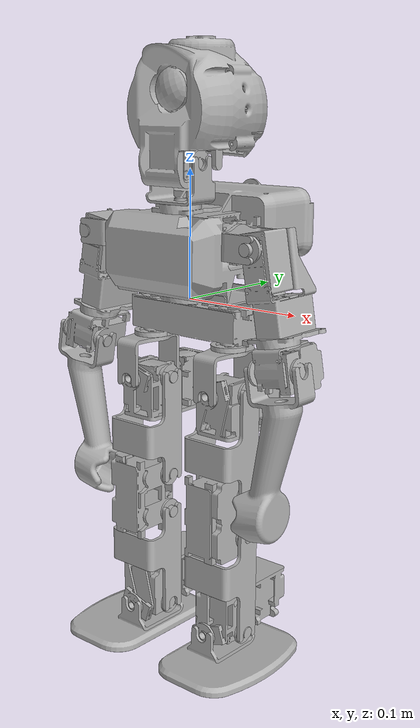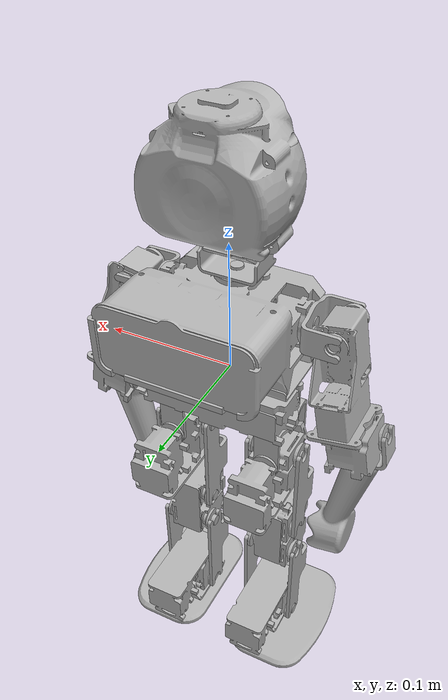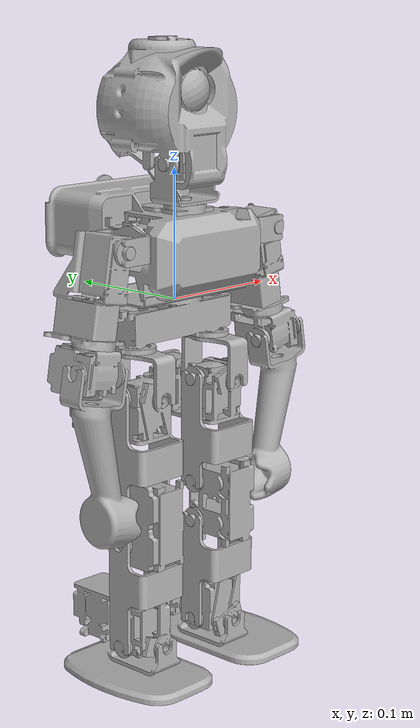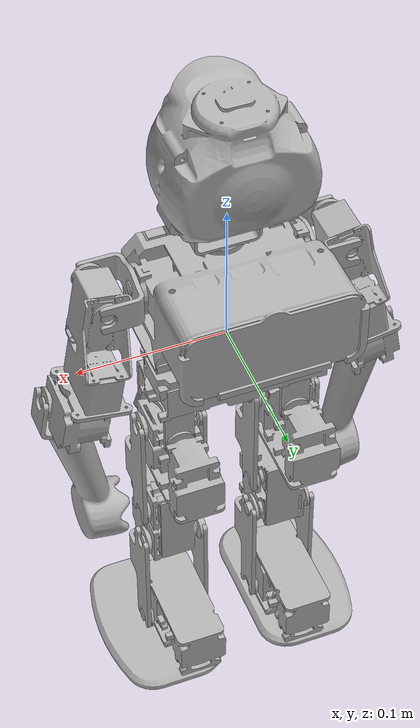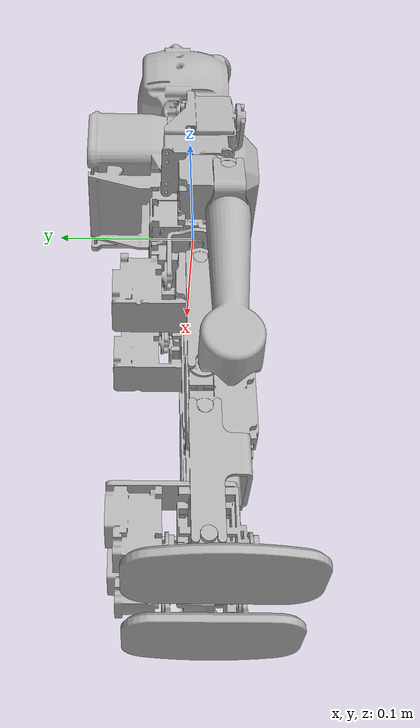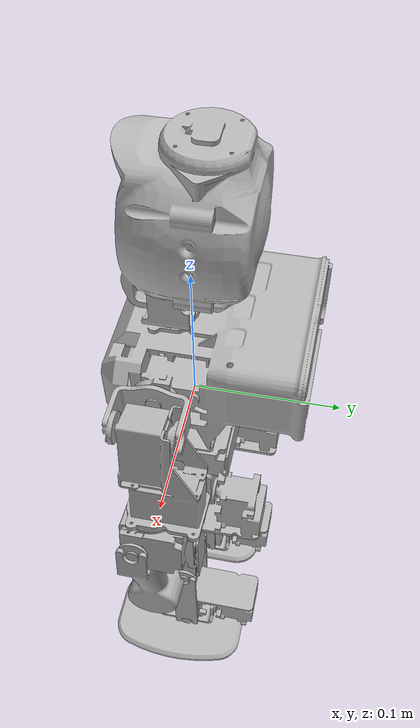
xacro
<?xml version="1.0" ?>
<robot name="roki" xmlns:xacro="http://www.ros.org/wiki/xacro">

<xacro:include filename="$(find roki_description)/urdf/materials.xacro" />
<xacro:include filename="$(find roki_description)/urdf/roki.trans" />
<xacro:include filename="$(find roki_description)/urdf/roki.gazebo" />
<link name="base_link">
  <inertial>
    <origin xyz="2.9200028407238833e-05 0.03136339266823339 0.049232642874940113" rpy="0 0 0"/>
    <mass value="0.6978470671486154"/>
    <inertia ixx="0.000836" iyy="0.000655" izz="0.001221" ixy="-1e-06" iyz="-4.8e-05" ixz="-0.0"/>
  </inertial>
  <visual>
    <origin xyz="0 0 0" rpy="0 0 0"/>
    <geometry>
      <mesh filename="../meshes/base_link.stl"/>
    </geometry>
    <material name="silver"/>
  </visual>
  <collision>
    <origin xyz="0 0 0" rpy="0 0 0"/>
    <geometry>
      <mesh filename="../meshes/base_link.stl"/>
    </geometry>
  </collision>
</link>

<link name="Waist_1">
  <inertial>
    <origin xyz="2.308951126554241e-05 0.010043771263089902 -0.019580735770714907" rpy="0 0 0"/>
    <mass value="0.15761065350197656"/>
    <inertia ixx="4.5e-05" iyy="0.000189" izz="0.000199" ixy="-0.0" iyz="-1e-06" ixz="0.0"/>
  </inertial>
  <visual>
    <origin xyz="0.0 -0.0 -0.0039" rpy="0 0 0"/>
    <geometry>
      <mesh filename="../meshes/Waist_1.stl"/>
    </geometry>
    <material name="silver"/>
  </visual>
  <collision>
    <origin xyz="0.0 -0.0 -0.0039" rpy="0 0 0"/>
    <geometry>
      <mesh filename="../meshes/Waist_1.stl"/>
    </geometry>
  </collision>
</link>

<link name="U_Dual_Lever_Carbon_1__1">
  <inertial>
    <origin xyz="4.508199369368526e-14 -0.00459793550468748 -0.010314227100914147" rpy="0 0 0"/>
    <mass value="0.009545203780731138"/>
    <inertia ixx="5e-06" iyy="1e-06" izz="4e-06" ixy="-0.0" iyz="-0.0" ixz="-0.0"/>
  </inertial>
  <visual>
    <origin xyz="-0.04 0.0 0.0339" rpy="0 0 0"/>
    <geometry>
      <mesh filename="../meshes/U_Dual_Lever_Carbon_1__1.stl"/>
    </geometry>
    <material name="silver"/>
  </visual>
  <collision>
    <origin xyz="-0.04 0.0 0.0339" rpy="0 0 0"/>
    <geometry>
      <mesh filename="../meshes/U_Dual_Lever_Carbon_1__1.stl"/>
    </geometry>
  </collision>
</link>

<link name="U_Dual_Lever_Carbon_2">
  <inertial>
    <origin xyz="4.5900783174346316e-14 -0.004597935504687689 -0.010314227100913793" rpy="0 0 0"/>
    <mass value="0.009545203780731142"/>
    <inertia ixx="5e-06" iyy="1e-06" izz="4e-06" ixy="-0.0" iyz="-0.0" ixz="-0.0"/>
  </inertial>
  <visual>
    <origin xyz="0.04 0.0 0.0339" rpy="0 0 0"/>
    <geometry>
      <mesh filename="../meshes/U_Dual_Lever_Carbon_2.stl"/>
    </geometry>
    <material name="silver"/>
  </visual>
  <collision>
    <origin xyz="0.04 0.0 0.0339" rpy="0 0 0"/>
    <geometry>
      <mesh filename="../meshes/U_Dual_Lever_Carbon_2.stl"/>
    </geometry>
  </collision>
</link>

<link name="Robot_Football_Player_SKS-2501_Neck_Carbonv2_1">
  <inertial>
    <origin xyz="1.59054234997918e-07 0.0004029194592024207 0.00889294708045188" rpy="0 0 0"/>
    <mass value="0.006889915174480099"/>
    <inertia ixx="1e-06" iyy="3e-06" izz="3e-06" ixy="0.0" iyz="-0.0" ixz="-0.0"/>
  </inertial>
  <visual>
    <origin xyz="-2.5e-05 0.011152 -0.07478" rpy="0 0 0"/>
    <geometry>
      <mesh filename="../meshes/Robot_Football_Player_SKS-2501_Neck_Carbonv2_1.stl"/>
    </geometry>
    <material name="silver"/>
  </visual>
  <collision>
    <origin xyz="-2.5e-05 0.011152 -0.07478" rpy="0 0 0"/>
    <geometry>
      <mesh filename="../meshes/Robot_Football_Player_SKS-2501_Neck_Carbonv2_1.stl"/>
    </geometry>
  </collision>
</link>

<link name="Robot_Football_Player_SKS-2501_Head_B0348_Head_Base_06v1_1">
  <inertial>
    <origin xyz="0.019224047998985833 0.015494041418051888 0.03424850028891592" rpy="0 0 0"/>
    <mass value="0.26416283236894345"/>
    <inertia ixx="0.000253" iyy="0.000229" izz="0.000221" ixy="0.0" iyz="-3.3e-05" ixz="-3e-06"/>
  </inertial>
  <visual>
    <origin xyz="0.019975 0.011152 -0.10478" rpy="0 0 0"/>
    <geometry>
      <mesh filename="../meshes/Robot_Football_Player_SKS-2501_Head_B0348_Head_Base_06v1_1.stl"/>
    </geometry>
    <material name="silver"/>
  </visual>
  <collision>
    <origin xyz="0.019975 0.011152 -0.10478" rpy="0 0 0"/>
    <geometry>
      <mesh filename="../meshes/Robot_Football_Player_SKS-2501_Head_B0348_Head_Base_06v1_1.stl"/>
    </geometry>
  </collision>
</link>

<link name="roki_Robot_Football_Player_SKS-2501_Servov12_10_v1_1">
  <inertial>
    <origin xyz="0.0058858874958540724 0.028181458629030074 -0.03337571755207666" rpy="0 0 0"/>
    <mass value="0.12983667443511107"/>
    <inertia ixx="9.4e-05" iyy="7.7e-05" izz="3.4e-05" ixy="-3e-06" iyz="1.9e-05" ixz="1.1e-05"/>
  </inertial>
  <visual>
    <origin xyz="-0.0799 0.03121 -0.0494" rpy="0 0 0"/>
    <geometry>
      <mesh filename="../meshes/roki_Robot_Football_Player_SKS-2501_Servov12_10_v1_1.stl"/>
    </geometry>
    <material name="silver"/>
  </visual>
  <collision>
    <origin xyz="-0.0799 0.03121 -0.0494" rpy="0 0 0"/>
    <geometry>
      <mesh filename="../meshes/roki_Robot_Football_Player_SKS-2501_Servov12_10_v1_1.stl"/>
    </geometry>
  </collision>
</link>

<link name="roki_Robot_Football_Player_SKS-2501_Servov12_10__v1_1__1">
  <inertial>
    <origin xyz="-0.0058842426537036585 0.028181458629013886 -0.03337600758181479" rpy="0 0 0"/>
    <mass value="0.12983667443511687"/>
    <inertia ixx="9.4e-05" iyy="7.7e-05" izz="3.4e-05" ixy="3e-06" iyz="1.9e-05" ixz="-1.1e-05"/>
  </inertial>
  <visual>
    <origin xyz="0.0799 0.03121 -0.0494" rpy="0 0 0"/>
    <geometry>
      <mesh filename="../meshes/roki_Robot_Football_Player_SKS-2501_Servov12_10__v1_1__1.stl"/>
    </geometry>
    <material name="silver"/>
  </visual>
  <collision>
    <origin xyz="0.0799 0.03121 -0.0494" rpy="0 0 0"/>
    <geometry>
      <mesh filename="../meshes/roki_Robot_Football_Player_SKS-2501_Servov12_10__v1_1__1.stl"/>
    </geometry>
  </collision>
</link>

<link name="Elbow_Bracket_01_1">
  <inertial>
    <origin xyz="-0.004047474545655377 0.0010168978596869216 -0.016722696886682605" rpy="0 0 0"/>
    <mass value="0.05553085932222209"/>
    <inertia ixx="1.2e-05" iyy="1.1e-05" izz="1.6e-05" ixy="0.0" iyz="0.0" ixz="1e-06"/>
  </inertial>
  <visual>
    <origin xyz="0.09239 0.008635 0.021432" rpy="0 0 0"/>
    <geometry>
      <mesh filename="../meshes/Elbow_Bracket_01_1.stl"/>
    </geometry>
    <material name="silver"/>
  </visual>
  <collision>
    <origin xyz="0.09239 0.008635 0.021432" rpy="0 0 0"/>
    <geometry>
      <mesh filename="../meshes/Elbow_Bracket_01_1.stl"/>
    </geometry>
  </collision>
</link>

<link name="Elbow_Bracket_01_1__1">
  <inertial>
    <origin xyz="0.004047474545655905 0.0010168978596869606 -0.016722696886683375" rpy="0 0 0"/>
    <mass value="0.055530859322222265"/>
    <inertia ixx="1.2e-05" iyy="1.1e-05" izz="1.6e-05" ixy="-0.0" iyz="0.0" ixz="-1e-06"/>
  </inertial>
  <visual>
    <origin xyz="-0.09239 0.008635 0.021432" rpy="0 0 0"/>
    <geometry>
      <mesh filename="../meshes/Elbow_Bracket_01_1__1.stl"/>
    </geometry>
    <material name="silver"/>
  </visual>
  <collision>
    <origin xyz="-0.09239 0.008635 0.021432" rpy="0 0 0"/>
    <geometry>
      <mesh filename="../meshes/Elbow_Bracket_01_1__1.stl"/>
    </geometry>
  </collision>
</link>

<link name="Hand_Football_Player_05_1">
  <inertial>
    <origin xyz="0.015641121769252822 1.938563667230886e-08 -0.06739227885463536" rpy="0 0 0"/>
    <mass value="0.048927254647909736"/>
    <inertia ixx="8.2e-05" iyy="8.4e-05" izz="1.1e-05" ixy="-0.0" iyz="-0.0" ixz="-1.2e-05"/>
  </inertial>
  <visual>
    <origin xyz="-0.07838 0.016535 0.04218" rpy="0 0 0"/>
    <geometry>
      <mesh filename="../meshes/Hand_Football_Player_05_1.stl"/>
    </geometry>
    <material name="silver"/>
  </visual>
  <collision>
    <origin xyz="-0.07838 0.016535 0.04218" rpy="0 0 0"/>
    <geometry>
      <mesh filename="../meshes/Hand_Football_Player_05_1.stl"/>
    </geometry>
  </collision>
</link>

<link name="Hand_Football_Player_05__1__1">
  <inertial>
    <origin xyz="-0.015641121769251268 -1.9385632887142235e-08 -0.06739227885463595" rpy="0 0 0"/>
    <mass value="0.04892725464790963"/>
    <inertia ixx="8.2e-05" iyy="8.4e-05" izz="1.1e-05" ixy="-0.0" iyz="0.0" ixz="1.2e-05"/>
  </inertial>
  <visual>
    <origin xyz="0.07838 0.016535 0.04218" rpy="0 0 0"/>
    <geometry>
      <mesh filename="../meshes/Hand_Football_Player_05__1__1.stl"/>
    </geometry>
    <material name="silver"/>
  </visual>
  <collision>
    <origin xyz="0.07838 0.016535 0.04218" rpy="0 0 0"/>
    <geometry>
      <mesh filename="../meshes/Hand_Football_Player_05__1__1.stl"/>
    </geometry>
  </collision>
</link>

<link name="U_Lever_Carbon_2__1">
  <inertial>
    <origin xyz="0.007714216006614476 4.458239333260394e-16 -2.4577562207639403e-14" rpy="0 0 0"/>
    <mass value="0.007572394947205684"/>
    <inertia ixx="3e-06" iyy="1e-06" izz="3e-06" ixy="0.0" iyz="0.0" ixz="-0.0"/>
  </inertial>
  <visual>
    <origin xyz="-0.0559 0.01121 -0.0494" rpy="0 0 0"/>
    <geometry>
      <mesh filename="../meshes/U_Lever_Carbon_2__1.stl"/>
    </geometry>
    <material name="silver"/>
  </visual>
  <collision>
    <origin xyz="-0.0559 0.01121 -0.0494" rpy="0 0 0"/>
    <geometry>
      <mesh filename="../meshes/U_Lever_Carbon_2__1.stl"/>
    </geometry>
  </collision>
</link>

<link name="U_Lever_Carbon_1__1">
  <inertial>
    <origin xyz="-0.007714216006614295 2.393918396847994e-16 -2.4195923042924505e-14" rpy="0 0 0"/>
    <mass value="0.007572394947205684"/>
    <inertia ixx="3e-06" iyy="1e-06" izz="3e-06" ixy="0.0" iyz="-0.0" ixz="0.0"/>
  </inertial>
  <visual>
    <origin xyz="0.0559 0.01121 -0.0494" rpy="0 0 0"/>
    <geometry>
      <mesh filename="../meshes/U_Lever_Carbon_1__1.stl"/>
    </geometry>
    <material name="silver"/>
  </visual>
  <collision>
    <origin xyz="0.0559 0.01121 -0.0494" rpy="0 0 0"/>
    <geometry>
      <mesh filename="../meshes/U_Lever_Carbon_1__1.stl"/>
    </geometry>
  </collision>
</link>

<link name="Knee_1__1">
  <inertial>
    <origin xyz="0.01861091530213354 -0.009330309461074559 -0.016566663881952354" rpy="0 0 0"/>
    <mass value="0.10930325968922582"/>
    <inertia ixx="5.3e-05" iyy="5e-05" izz="3.3e-05" ixy="0.0" iyz="-0.0" ixz="-0.0"/>
  </inertial>
  <visual>
    <origin xyz="-0.0196 0.001 0.1484" rpy="0 0 0"/>
    <geometry>
      <mesh filename="../meshes/Knee_1__1.stl"/>
    </geometry>
    <material name="silver"/>
  </visual>
  <collision>
    <origin xyz="-0.0196 0.001 0.1484" rpy="0 0 0"/>
    <geometry>
      <mesh filename="../meshes/Knee_1__1.stl"/>
    </geometry>
  </collision>
</link>

<link name="Hip_Shin_Carbon_1__1__1">
  <inertial>
    <origin xyz="0.01999999999999781 -0.00810351282531593 -0.03792612915551327" rpy="0 0 0"/>
    <mass value="0.022625400240065405"/>
    <inertia ixx="1.3e-05" iyy="1.8e-05" izz="1.2e-05" ixy="-0.0" iyz="1e-06" ixz="-0.0"/>
  </inertial>
  <visual>
    <origin xyz="-0.0196 0.001 0.1814" rpy="0 0 0"/>
    <geometry>
      <mesh filename="../meshes/Hip_Shin_Carbon_1__1__1.stl"/>
    </geometry>
    <material name="silver"/>
  </visual>
  <collision>
    <origin xyz="-0.0196 0.001 0.1814" rpy="0 0 0"/>
    <geometry>
      <mesh filename="../meshes/Hip_Shin_Carbon_1__1__1.stl"/>
    </geometry>
  </collision>
</link>

<link name="Knee_1__1__1">
  <inertial>
    <origin xyz="0.021189084697862258 -0.009330309461045357 -0.016566663882006533" rpy="0 0 0"/>
    <mass value="0.10930325968922545"/>
    <inertia ixx="5.3e-05" iyy="5e-05" izz="3.3e-05" ixy="-0.0" iyz="-0.0" ixz="0.0"/>
  </inertial>
  <visual>
    <origin xyz="0.0596 0.001 0.1484" rpy="0 0 0"/>
    <geometry>
      <mesh filename="../meshes/Knee_1__1__1.stl"/>
    </geometry>
    <material name="silver"/>
  </visual>
  <collision>
    <origin xyz="0.0596 0.001 0.1484" rpy="0 0 0"/>
    <geometry>
      <mesh filename="../meshes/Knee_1__1__1.stl"/>
    </geometry>
  </collision>
</link>

<link name="Hip_Shin_Carbon_2__1">
  <inertial>
    <origin xyz="-0.020000000000005392 -0.008103512825321298 -0.03792612915550861" rpy="0 0 0"/>
    <mass value="0.022625400240065388"/>
    <inertia ixx="1.3e-05" iyy="1.8e-05" izz="1.2e-05" ixy="-0.0" iyz="1e-06" ixz="-0.0"/>
  </inertial>
  <visual>
    <origin xyz="0.0198 0.001 0.1814" rpy="0 0 0"/>
    <geometry>
      <mesh filename="../meshes/Hip_Shin_Carbon_2__1.stl"/>
    </geometry>
    <material name="silver"/>
  </visual>
  <collision>
    <origin xyz="0.0198 0.001 0.1814" rpy="0 0 0"/>
    <geometry>
      <mesh filename="../meshes/Hip_Shin_Carbon_2__1.stl"/>
    </geometry>
  </collision>
</link>

<link name="Dual_Servo_Al_022_3">
  <inertial>
    <origin xyz="0.019442839528037853 0.015065566617809313 0.011274811249782246" rpy="0 0 0"/>
    <mass value="0.11852191596762508"/>
    <inertia ixx="8.3e-05" iyy="3.3e-05" izz="7.2e-05" ixy="-1e-06" iyz="-7e-06" ixz="-0.0"/>
  </inertial>
  <visual>
    <origin xyz="0.0598 0.001 0.2639" rpy="0 0 0"/>
    <geometry>
      <mesh filename="../meshes/Dual_Servo_Al_022_3.stl"/>
    </geometry>
    <material name="silver"/>
  </visual>
  <collision>
    <origin xyz="0.0598 0.001 0.2639" rpy="0 0 0"/>
    <geometry>
      <mesh filename="../meshes/Dual_Servo_Al_022_3.stl"/>
    </geometry>
  </collision>
</link>

<link name="Shoe_Flex_1__1">
  <inertial>
    <origin xyz="0.01077197187732682 -0.029657932964981537 -0.020426201063386384" rpy="0 0 0"/>
    <mass value="0.05098521202956298"/>
    <inertia ixx="4.7e-05" iyy="2.1e-05" izz="6.6e-05" ixy="0.0" iyz="-0.0" ixz="1e-06"/>
  </inertial>
  <visual>
    <origin xyz="-0.039 -0.0211 0.2639" rpy="0 0 0"/>
    <geometry>
      <mesh filename="../meshes/Shoe_Flex_1__1.stl"/>
    </geometry>
    <material name="silver"/>
  </visual>
  <collision>
    <origin xyz="-0.039 -0.0211 0.2639" rpy="0 0 0"/>
    <geometry>
      <mesh filename="../meshes/Shoe_Flex_1__1.stl"/>
    </geometry>
  </collision>
</link>

<link name="roki2_simlify_Dual_Servo_Al_022Copyv1_2">
  <inertial>
    <origin xyz="0.020357428670802896 0.015064587409574209 0.011268101437178046" rpy="0 0 0"/>
    <mass value="0.1185219159610662"/>
    <inertia ixx="8.3e-05" iyy="3.3e-05" izz="7.2e-05" ixy="1e-06" iyz="-7e-06" ixz="0.0"/>
  </inertial>
  <visual>
    <origin xyz="-0.0196 0.001 0.2639" rpy="0 0 0"/>
    <geometry>
      <mesh filename="../meshes/roki2_simlify_Dual_Servo_Al_022Copyv1_2.stl"/>
    </geometry>
    <material name="silver"/>
  </visual>
  <collision>
    <origin xyz="-0.0196 0.001 0.2639" rpy="0 0 0"/>
    <geometry>
      <mesh filename="../meshes/roki2_simlify_Dual_Servo_Al_022Copyv1_2.stl"/>
    </geometry>
  </collision>
</link>

<link name="Shoe_Flex_1">
  <inertial>
    <origin xyz="-0.010772002418327563 0.01894180700262037 -0.02042626598922509" rpy="0 0 0"/>
    <mass value="0.05098531070774809"/>
    <inertia ixx="4.7e-05" iyy="2.1e-05" izz="6.6e-05" ixy="-0.0" iyz="-0.0" ixz="-1e-06"/>
  </inertial>
  <visual>
    <origin xyz="0.039394 0.027478 0.263751" rpy="0 0 0"/>
    <geometry>
      <mesh filename="../meshes/Shoe_Flex_1.stl"/>
    </geometry>
    <material name="silver"/>
  </visual>
  <collision>
    <origin xyz="0.039394 0.027478 0.263751" rpy="0 0 0"/>
    <geometry>
      <mesh filename="../meshes/Shoe_Flex_1.stl"/>
    </geometry>
  </collision>
</link>

<link name="Dual_Servo_Al_022__1__1">
  <inertial>
    <origin xyz="0.0009571604719541549 -0.007034433382188548 -0.011274811249774988" rpy="0 0 0"/>
    <mass value="0.11852191596762508"/>
    <inertia ixx="8.3e-05" iyy="3.3e-05" izz="7.2e-05" ixy="1e-06" iyz="7e-06" ixz="-0.0"/>
  </inertial>
  <visual>
    <origin xyz="0.04 -0.0211 0.0659" rpy="0 0 0"/>
    <geometry>
      <mesh filename="../meshes/Dual_Servo_Al_022__1__1.stl"/>
    </geometry>
    <material name="silver"/>
  </visual>
  <collision>
    <origin xyz="0.04 -0.0211 0.0659" rpy="0 0 0"/>
    <geometry>
      <mesh filename="../meshes/Dual_Servo_Al_022__1__1.stl"/>
    </geometry>
  </collision>
</link>

<link name="roki2_simlify_Dual_Servo_Al_022Copyv1__1__1">
  <inertial>
    <origin xyz="-0.0009574286708060598 -0.0070354125904229115 -0.011268101437177519" rpy="0 0 0"/>
    <mass value="0.1185219159610662"/>
    <inertia ixx="8.3e-05" iyy="3.3e-05" izz="7.2e-05" ixy="-1e-06" iyz="7e-06" ixz="0.0"/>
  </inertial>
  <visual>
    <origin xyz="-0.04 -0.0211 0.0659" rpy="0 0 0"/>
    <geometry>
      <mesh filename="../meshes/roki2_simlify_Dual_Servo_Al_022Copyv1__1__1.stl"/>
    </geometry>
    <material name="silver"/>
  </visual>
  <collision>
    <origin xyz="-0.04 -0.0211 0.0659" rpy="0 0 0"/>
    <geometry>
      <mesh filename="../meshes/roki2_simlify_Dual_Servo_Al_022Copyv1__1__1.stl"/>
    </geometry>
  </collision>
</link>

<link name="Hip_Shin_Carbon_2">
  <inertial>
    <origin xyz="0.019999999999999296 -0.008103512825317922 -0.04457387084448518" rpy="0 0 0"/>
    <mass value="0.022625400240065388"/>
    <inertia ixx="1.3e-05" iyy="1.8e-05" izz="1.2e-05" ixy="0.0" iyz="-1e-06" ixz="0.0"/>
  </inertial>
  <visual>
    <origin xyz="-0.0196 0.001 0.0659" rpy="0 0 0"/>
    <geometry>
      <mesh filename="../meshes/Hip_Shin_Carbon_2.stl"/>
    </geometry>
    <material name="silver"/>
  </visual>
  <collision>
    <origin xyz="-0.0196 0.001 0.0659" rpy="0 0 0"/>
    <geometry>
      <mesh filename="../meshes/Hip_Shin_Carbon_2.stl"/>
    </geometry>
  </collision>
</link>

<link name="Hip_Shin_Carbon_1__1">
  <inertial>
    <origin xyz="-0.0200000000000011 -0.00810351282531565 -0.044573870844484706" rpy="0 0 0"/>
    <mass value="0.022625400240065405"/>
    <inertia ixx="1.3e-05" iyy="1.8e-05" izz="1.2e-05" ixy="0.0" iyz="-1e-06" ixz="-0.0"/>
  </inertial>
  <visual>
    <origin xyz="0.0196 0.001 0.0659" rpy="0 0 0"/>
    <geometry>
      <mesh filename="../meshes/Hip_Shin_Carbon_1__1.stl"/>
    </geometry>
    <material name="silver"/>
  </visual>
  <collision>
    <origin xyz="0.0196 0.001 0.0659" rpy="0 0 0"/>
    <geometry>
      <mesh filename="../meshes/Hip_Shin_Carbon_1__1.stl"/>
    </geometry>
  </collision>
</link>

<joint name="waist_yaw" type="continuous">
  <origin xyz="0.0 0.0 0.0039" rpy="0 0 0"/>
  <parent link="base_link"/>
  <child link="Waist_1"/>
  <axis xyz="-0.0 -0.0 -1.0"/>
</joint>

<joint name="left_hip_yaw" type="revolute">
  <origin xyz="0.04 -0.0 -0.0378" rpy="0 0 0"/>
  <parent link="Waist_1"/>
  <child link="U_Dual_Lever_Carbon_1__1"/>
  <axis xyz="-0.0 -0.0 -1.0"/>
  <limit upper="0.523599" lower="-0.523599" effort="100" velocity="100"/>
</joint>

<joint name="right_hip_yaw" type="revolute">
  <origin xyz="-0.04 -0.0 -0.0378" rpy="0 0 0"/>
  <parent link="Waist_1"/>
  <child link="U_Dual_Lever_Carbon_2"/>
  <axis xyz="-0.0 -0.0 -1.0"/>
  <limit upper="0.523599" lower="-0.523599" effort="100" velocity="100"/>
</joint>

<joint name="head_yaw" type="revolute">
  <origin xyz="2.5e-05 -0.011152 0.07478" rpy="0 0 0"/>
  <parent link="base_link"/>
  <child link="Robot_Football_Player_SKS-2501_Neck_Carbonv2_1"/>
  <axis xyz="0.0 -0.0 1.0"/>
  <limit upper="0.785398" lower="-0.785398" effort="100" velocity="100"/>
</joint>

<joint name="head_pitch" type="revolute">
  <origin xyz="-0.02 0.0 0.03" rpy="0 0 0"/>
  <parent link="Robot_Football_Player_SKS-2501_Neck_Carbonv2_1"/>
  <child link="Robot_Football_Player_SKS-2501_Head_B0348_Head_Base_06v1_1"/>
  <axis xyz="-1.0 -0.0 0.0"/>
  <limit upper="0.698132" lower="-1.919862" effort="100" velocity="100"/>
</joint>

<joint name="left_shoulder_roll" type="revolute">
  <origin xyz="0.024 -0.02 0.0" rpy="0 0 0"/>
  <parent link="U_Lever_Carbon_2__1"/>
  <child link="roki_Robot_Football_Player_SKS-2501_Servov12_10_v1_1"/>
  <axis xyz="-0.0 -1.0 0.0"/>
  <limit upper="2.96706" lower="0.0" effort="100" velocity="100"/>
</joint>

<joint name="right_shoulder_roll" type="revolute">
  <origin xyz="-0.024 -0.02 0.0" rpy="0 0 0"/>
  <parent link="U_Lever_Carbon_1__1"/>
  <child link="roki_Robot_Football_Player_SKS-2501_Servov12_10__v1_1__1"/>
  <axis xyz="-0.0 -1.0 -0.0"/>
  <limit upper="0.0" lower="-2.96706" effort="100" velocity="100"/>
</joint>

<joint name="right_elbow_yaw" type="revolute">
  <origin xyz="-0.01249 0.022575 -0.070832" rpy="0 0 0"/>
  <parent link="roki_Robot_Football_Player_SKS-2501_Servov12_10__v1_1__1"/>
  <child link="Elbow_Bracket_01_1"/>
  <axis xyz="-0.173648 -0.0 -0.984808"/>
  <limit upper="1.570796" lower="-1.570796" effort="100" velocity="100"/>
</joint>

<joint name="left_elbow_yaw" type="revolute">
  <origin xyz="0.01249 0.022575 -0.070832" rpy="0 0 0"/>
  <parent link="roki_Robot_Football_Player_SKS-2501_Servov12_10_v1_1"/>
  <child link="Elbow_Bracket_01_1__1"/>
  <axis xyz="0.173648 0.0 -0.984808"/>
  <limit upper="1.570796" lower="-1.570796" effort="100" velocity="100"/>
</joint>

<joint name="left_elbow_pitch" type="revolute">
  <origin xyz="-0.01401 -0.0079 -0.020748" rpy="0 0 0"/>
  <parent link="Elbow_Bracket_01_1__1"/>
  <child link="Hand_Football_Player_05_1"/>
  <axis xyz="0.984808 0.0 0.173648"/>
  <limit upper="0.174533" lower="-1.919862" effort="100" velocity="100"/>
</joint>

<joint name="right_elbow_pitch" type="revolute">
  <origin xyz="0.01401 -0.0079 -0.020748" rpy="0 0 0"/>
  <parent link="Elbow_Bracket_01_1"/>
  <child link="Hand_Football_Player_05__1__1"/>
  <axis xyz="0.984808 0.0 -0.173648"/>
  <limit upper="0.174533" lower="-1.919862" effort="100" velocity="100"/>
</joint>

<joint name="left_shoulder_pitch" type="revolute">
  <origin xyz="0.0559 -0.01121 0.0494" rpy="0 0 0"/>
  <parent link="base_link"/>
  <child link="U_Lever_Carbon_2__1"/>
  <axis xyz="1.0 0.0 -0.0"/>
  <limit upper="3.141593" lower="-3.141593" effort="100" velocity="100"/>
</joint>

<joint name="right_shoulder_pitch" type="revolute">
  <origin xyz="-0.0559 -0.01121 0.0494" rpy="0 0 0"/>
  <parent link="base_link"/>
  <child link="U_Lever_Carbon_1__1"/>
  <axis xyz="-1.0 -0.0 0.0"/>
  <limit upper="3.141593" lower="-3.141593" effort="100" velocity="100"/>
</joint>

<joint name="left_upper_knee" type="revolute">
  <origin xyz="0.0 0.0 -0.0825" rpy="0 0 0"/>
  <parent link="Hip_Shin_Carbon_2"/>
  <child link="Knee_1__1"/>
  <axis xyz="1.0 0.0 -0.0"/>
  <limit upper="2.094395" lower="-0.087266" effort="100" velocity="100"/>
</joint>

<joint name="left_bottom_knee" type="revolute">
  <origin xyz="0.0 0.0 -0.033" rpy="0 0 0"/>
  <parent link="Knee_1__1"/>
  <child link="Hip_Shin_Carbon_1__1__1"/>
  <axis xyz="1.0 0.0 -0.0"/>
  <limit upper="2.094395" lower="-0.087266" effort="100" velocity="100"/>
</joint>

<joint name="right_upper_knee" type="revolute">
  <origin xyz="-0.04 0.0 -0.0825" rpy="0 0 0"/>
  <parent link="Hip_Shin_Carbon_1__1"/>
  <child link="Knee_1__1__1"/>
  <axis xyz="1.0 -0.0 -0.0"/>
  <limit upper="2.094395" lower="-0.087266" effort="100" velocity="100"/>
</joint>

<joint name="right_bottom_knee" type="revolute">
  <origin xyz="0.0398 0.0 -0.033" rpy="0 0 0"/>
  <parent link="Knee_1__1__1"/>
  <child link="Hip_Shin_Carbon_2__1"/>
  <axis xyz="1.0 -0.0 0.0"/>
  <limit upper="2.094395" lower="-0.087266" effort="100" velocity="100"/>
</joint>

<joint name="right_ankle_pitch" type="revolute">
  <origin xyz="-0.04 0.0 -0.0825" rpy="0 0 0"/>
  <parent link="Hip_Shin_Carbon_2__1"/>
  <child link="Dual_Servo_Al_022_3"/>
  <axis xyz="1.0 0.0 -0.0"/>
  <limit upper="1.22173" lower="-0.785398" effort="100" velocity="100"/>
</joint>

<joint name="left_ankle_roll" type="revolute">
  <origin xyz="0.0194 0.0221 0.0" rpy="0 0 0"/>
  <parent link="roki2_simlify_Dual_Servo_Al_022Copyv1_2"/>
  <child link="Shoe_Flex_1__1"/>
  <axis xyz="0.0 1.0 -0.0"/>
  <limit upper="0.523599" lower="-0.523599" effort="100" velocity="100"/>
</joint>

<joint name="left_ankle_pitch" type="revolute">
  <origin xyz="0.0 0.0 -0.0825" rpy="0 0 0"/>
  <parent link="Hip_Shin_Carbon_1__1__1"/>
  <child link="roki2_simlify_Dual_Servo_Al_022Copyv1_2"/>
  <axis xyz="1.0 0.0 -0.0"/>
  <limit upper="0.872665" lower="-0.698132" effort="100" velocity="100"/>
</joint>

<joint name="right_ankle_roll" type="revolute">
  <origin xyz="0.020406 -0.026478 0.000149" rpy="0 0 0"/>
  <parent link="Dual_Servo_Al_022_3"/>
  <child link="Shoe_Flex_1"/>
  <axis xyz="-0.0 1.0 -0.0"/>
  <limit upper="0.523599" lower="-0.523599" effort="100" velocity="100"/>
</joint>

<joint name="right_hip_roll" type="revolute">
  <origin xyz="0.0 0.0211 -0.032" rpy="0 0 0"/>
  <parent link="U_Dual_Lever_Carbon_2"/>
  <child link="Dual_Servo_Al_022__1__1"/>
  <axis xyz="-0.0 1.0 -0.0"/>
  <limit upper="0.523599" lower="-0.523599" effort="100" velocity="100"/>
</joint>

<joint name="left_hip_roll" type="revolute">
  <origin xyz="0.0 0.0211 -0.032" rpy="0 0 0"/>
  <parent link="U_Dual_Lever_Carbon_1__1"/>
  <child link="roki2_simlify_Dual_Servo_Al_022Copyv1__1__1"/>
  <axis xyz="-0.0 1.0 -0.0"/>
  <limit upper="0.523599" lower="-0.523599" effort="100" velocity="100"/>
</joint>

<joint name="left_hip_pitch" type="revolute">
  <origin xyz="-0.0204 -0.0221 0.0" rpy="0 0 0"/>
  <parent link="roki2_simlify_Dual_Servo_Al_022Copyv1__1__1"/>
  <child link="Hip_Shin_Carbon_2"/>
  <axis xyz="1.0 0.0 -0.0"/>
  <limit upper="2.094395" lower="-1.745329" effort="100" velocity="100"/>
</joint>

<joint name="right_hip_pitch" type="revolute">
  <origin xyz="0.0204 -0.0221 0.0" rpy="0 0 0"/>
  <parent link="Dual_Servo_Al_022__1__1"/>
  <child link="Hip_Shin_Carbon_1__1"/>
  <axis xyz="1.0 -0.0 -0.0"/>
  <limit upper="2.094395" lower="-1.745329" effort="100" velocity="100"/>
</joint>

</robot>

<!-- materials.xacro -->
<robot name="roki" xmlns:xacro="http://www.ros.org/wiki/xacro" >

<material name="silver">
  <color rgba="0.700 0.700 0.700 1.000"/>
</material>

</robot>

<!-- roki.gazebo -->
<robot name="roki" xmlns:xacro="http://www.ros.org/wiki/xacro" >

<xacro:property name="body_color" value="Gazebo/Silver" />

<gazebo>
  <plugin name="control" filename="libgazebo_ros_control.so"/>
</gazebo>
<gazebo reference="base_link">
  <material>${body_color}</material>
  <mu1>0.2</mu1>
  <mu2>0.2</mu2>
  <selfCollide>true</selfCollide>
  <gravity>true</gravity>
</gazebo>

<gazebo reference="Waist_1">
  <material>${body_color}</material>
  <mu1>0.2</mu1>
  <mu2>0.2</mu2>
  <selfCollide>true</selfCollide>
</gazebo>

<gazebo reference="U_Dual_Lever_Carbon_1__1">
  <material>${body_color}</material>
  <mu1>0.2</mu1>
  <mu2>0.2</mu2>
  <selfCollide>true</selfCollide>
</gazebo>

<gazebo reference="U_Dual_Lever_Carbon_2">
  <material>${body_color}</material>
  <mu1>0.2</mu1>
  <mu2>0.2</mu2>
  <selfCollide>true</selfCollide>
</gazebo>

<gazebo reference="Robot_Football_Player_SKS-2501_Neck_Carbonv2_1">
  <material>${body_color}</material>
  <mu1>0.2</mu1>
  <mu2>0.2</mu2>
  <selfCollide>true</selfCollide>
</gazebo>

<gazebo reference="Robot_Football_Player_SKS-2501_Head_B0348_Head_Base_06v1_1">
  <material>${body_color}</material>
  <mu1>0.2</mu1>
  <mu2>0.2</mu2>
  <selfCollide>true</selfCollide>
</gazebo>

<gazebo reference="roki_Robot_Football_Player_SKS-2501_Servov12_10_v1_1">
  <material>${body_color}</material>
  <mu1>0.2</mu1>
  <mu2>0.2</mu2>
  <selfCollide>true</selfCollide>
</gazebo>

<gazebo reference="roki_Robot_Football_Player_SKS-2501_Servov12_10__v1_1__1">
  <material>${body_color}</material>
  <mu1>0.2</mu1>
  <mu2>0.2</mu2>
  <selfCollide>true</selfCollide>
</gazebo>

<gazebo reference="Elbow_Bracket_01_1">
  <material>${body_color}</material>
  <mu1>0.2</mu1>
  <mu2>0.2</mu2>
  <selfCollide>true</selfCollide>
</gazebo>

<gazebo reference="Elbow_Bracket_01_1__1">
  <material>${body_color}</material>
  <mu1>0.2</mu1>
  <mu2>0.2</mu2>
  <selfCollide>true</selfCollide>
</gazebo>

<gazebo reference="Hand_Football_Player_05_1">
  <material>${body_color}</material>
  <mu1>0.2</mu1>
  <mu2>0.2</mu2>
  <selfCollide>true</selfCollide>
</gazebo>

<gazebo reference="Hand_Football_Player_05__1__1">
  <material>${body_color}</material>
  <mu1>0.2</mu1>
  <mu2>0.2</mu2>
  <selfCollide>true</selfCollide>
</gazebo>

<gazebo reference="U_Lever_Carbon_2__1">
  <material>${body_color}</material>
  <mu1>0.2</mu1>
  <mu2>0.2</mu2>
  <selfCollide>true</selfCollide>
</gazebo>

<gazebo reference="U_Lever_Carbon_1__1">
  <material>${body_color}</material>
  <mu1>0.2</mu1>
  <mu2>0.2</mu2>
  <selfCollide>true</selfCollide>
</gazebo>

<gazebo reference="Knee_1__1">
  <material>${body_color}</material>
  <mu1>0.2</mu1>
  <mu2>0.2</mu2>
  <selfCollide>true</selfCollide>
</gazebo>

<gazebo reference="Hip_Shin_Carbon_1__1__1">
  <material>${body_color}</material>
  <mu1>0.2</mu1>
  <mu2>0.2</mu2>
  <selfCollide>true</selfCollide>
</gazebo>

<gazebo reference="Knee_1__1__1">
  <material>${body_color}</material>
  <mu1>0.2</mu1>
  <mu2>0.2</mu2>
  <selfCollide>true</selfCollide>
</gazebo>

<gazebo reference="Hip_Shin_Carbon_2__1">
  <material>${body_color}</material>
  <mu1>0.2</mu1>
  <mu2>0.2</mu2>
  <selfCollide>true</selfCollide>
</gazebo>

<gazebo reference="Dual_Servo_Al_022_3">
  <material>${body_color}</material>
  <mu1>0.2</mu1>
  <mu2>0.2</mu2>
  <selfCollide>true</selfCollide>
</gazebo>

<gazebo reference="Shoe_Flex_1__1">
  <material>${body_color}</material>
  <mu1>0.2</mu1>
  <mu2>0.2</mu2>
  <selfCollide>true</selfCollide>
</gazebo>

<gazebo reference="roki2_simlify_Dual_Servo_Al_022Copyv1_2">
  <material>${body_color}</material>
  <mu1>0.2</mu1>
  <mu2>0.2</mu2>
  <selfCollide>true</selfCollide>
</gazebo>

<gazebo reference="Shoe_Flex_1">
  <material>${body_color}</material>
  <mu1>0.2</mu1>
  <mu2>0.2</mu2>
  <selfCollide>true</selfCollide>
</gazebo>

<gazebo reference="Dual_Servo_Al_022__1__1">
  <material>${body_color}</material>
  <mu1>0.2</mu1>
  <mu2>0.2</mu2>
  <selfCollide>true</selfCollide>
</gazebo>

<gazebo reference="roki2_simlify_Dual_Servo_Al_022Copyv1__1__1">
  <material>${body_color}</material>
  <mu1>0.2</mu1>
  <mu2>0.2</mu2>
  <selfCollide>true</selfCollide>
</gazebo>

<gazebo reference="Hip_Shin_Carbon_2">
  <material>${body_color}</material>
  <mu1>0.2</mu1>
  <mu2>0.2</mu2>
  <selfCollide>true</selfCollide>
</gazebo>

<gazebo reference="Hip_Shin_Carbon_1__1">
  <material>${body_color}</material>
  <mu1>0.2</mu1>
  <mu2>0.2</mu2>
  <selfCollide>true</selfCollide>
</gazebo>

</robot>
